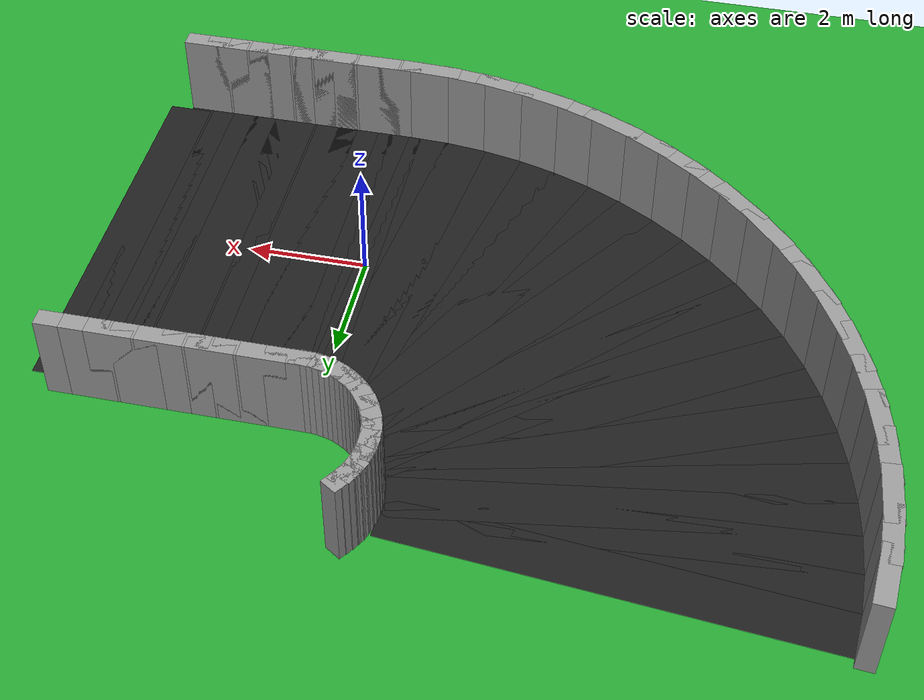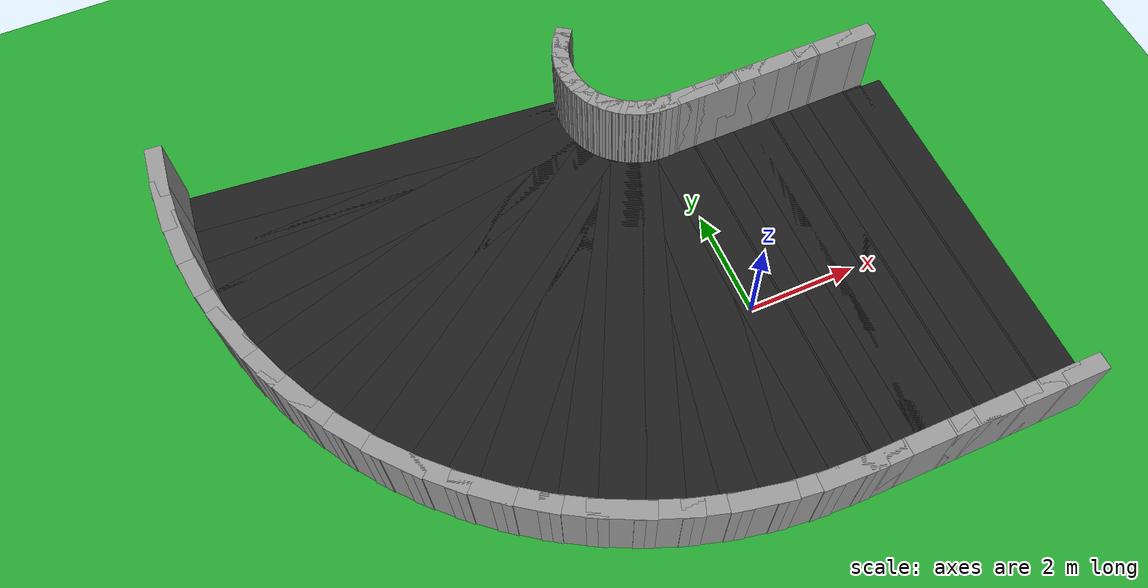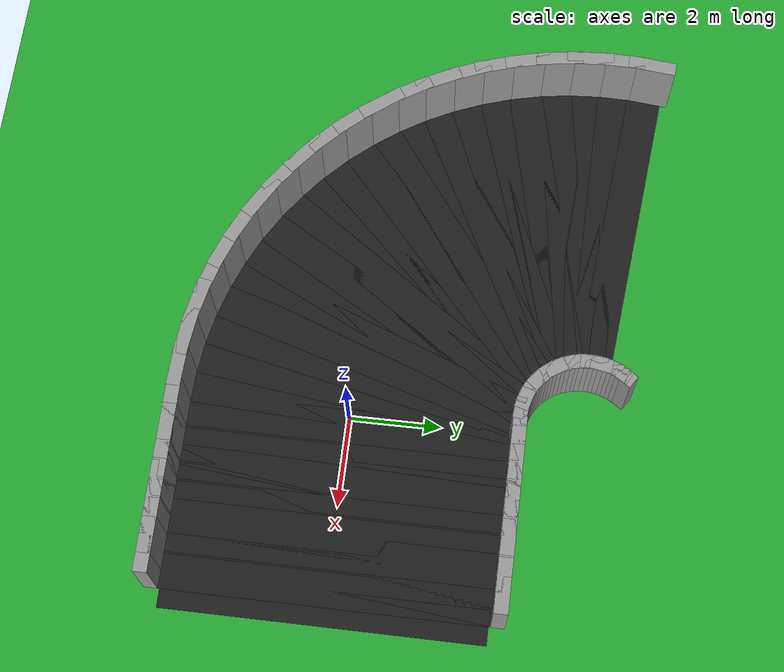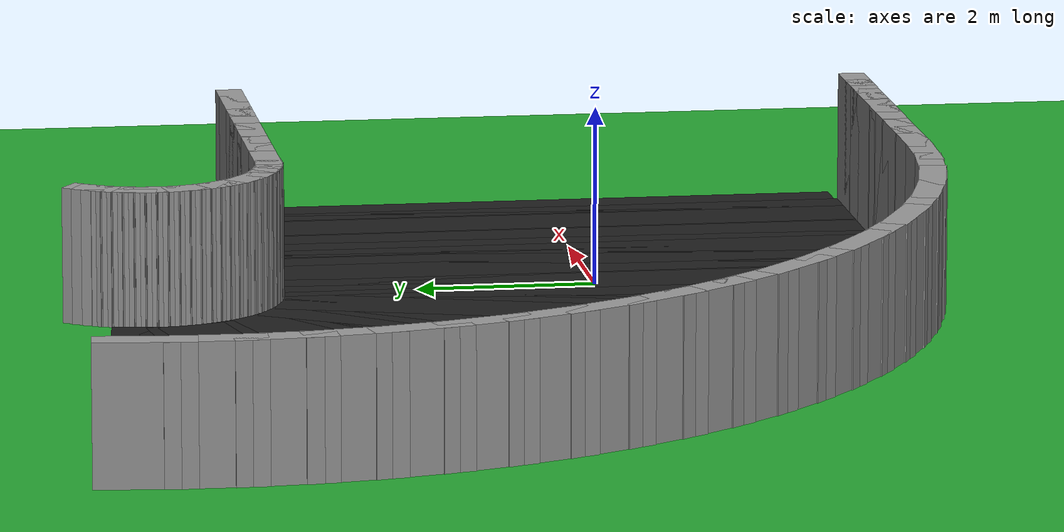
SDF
<sdf version="1.6">
 <world name="obstacle_taper">
  <include><uri>model://sun</uri></include>
  <model name="ground_plane">
   <static>true</static>
   <link name="link">
    <collision name="collision">
     <surface><friction><ode><mu>100</mu><mu2>50</mu2></ode></friction></surface>
     <geometry><plane><normal>0 0 1</normal><size>120 120</size></plane></geometry>
    </collision>
    <visual name="visual">
     <geometry><plane><normal>0 0 1</normal><size>120 120</size></plane></geometry>
     <material>
      <script><uri>file://media/materials/scripts/gazebo.material</uri><name>Gazebo/Green</name></script>
     </material>
    </visual>
   </link>
  </model>
  <model name="asphalt_0">
   <static>true</static>
   <pose>0.200 0.000 0.005 0 0 0.00000</pose>
   <link name="link">
    <visual name="visual">
     <geometry><box><size>0.760 7.000 0.010</size></box></geometry>
     <material>
      <script><uri>file://media/materials/scripts/gazebo.material</uri><name>Gazebo/Black</name></script>
     </material>
    </visual>
   </link>
  </model>
  <model name="curbL_0">
   <static>true</static>
   <pose>0.200 3.650 0.750 0 0 0.00000</pose>
   <link name="link">
    <collision name="collision"><geometry><box><size>0.760 0.300 1.500</size></box></geometry></collision>
    <visual name="visual">
     <geometry><box><size>0.760 0.300 1.500</size></box></geometry>
     <material>
      <script><uri>file://media/materials/scripts/gazebo.material</uri><name>Gazebo/Grey</name></script>
     </material>
    </visual>
   </link>
  </model>
  <model name="curbR_0">
   <static>true</static>
   <pose>0.200 -3.650 0.750 0 0 0.00000</pose>
   <link name="link">
    <collision name="collision"><geometry><box><size>0.760 0.300 1.500</size></box></geometry></collision>
    <visual name="visual">
     <geometry><box><size>0.760 0.300 1.500</size></box></geometry>
     <material>
      <script><uri>file://media/materials/scripts/gazebo.material</uri><name>Gazebo/Grey</name></script>
     </material>
    </visual>
   </link>
  </model>
  <model name="asphalt_1">
   <static>true</static>
   <pose>0.600 0.000 0.005 0 0 0.00000</pose>
   <link name="link">
    <visual name="visual">
     <geometry><box><size>0.760 7.000 0.010</size></box></geometry>
     <material>
      <script><uri>file://media/materials/scripts/gazebo.material</uri><name>Gazebo/Black</name></script>
     </material>
    </visual>
   </link>
  </model>
  <model name="curbL_1">
   <static>true</static>
   <pose>0.600 3.650 0.750 0 0 0.00000</pose>
   <link name="link">
    <collision name="collision"><geometry><box><size>0.760 0.300 1.500</size></box></geometry></collision>
    <visual name="visual">
     <geometry><box><size>0.760 0.300 1.500</size></box></geometry>
     <material>
      <script><uri>file://media/materials/scripts/gazebo.material</uri><name>Gazebo/Grey</name></script>
     </material>
    </visual>
   </link>
  </model>
  <model name="curbR_1">
   <static>true</static>
   <pose>0.600 -3.650 0.750 0 0 0.00000</pose>
   <link name="link">
    <collision name="collision"><geometry><box><size>0.760 0.300 1.500</size></box></geometry></collision>
    <visual name="visual">
     <geometry><box><size>0.760 0.300 1.500</size></box></geometry>
     <material>
      <script><uri>file://media/materials/scripts/gazebo.material</uri><name>Gazebo/Grey</name></script>
     </material>
    </visual>
   </link>
  </model>
  <model name="asphalt_2">
   <static>true</static>
   <pose>1.000 0.000 0.005 0 0 0.00000</pose>
   <link name="link">
    <visual name="visual">
     <geometry><box><size>0.760 7.000 0.010</size></box></geometry>
     <material>
      <script><uri>file://media/materials/scripts/gazebo.material</uri><name>Gazebo/Black</name></script>
     </material>
    </visual>
   </link>
  </model>
  <model name="curbL_2">
   <static>true</static>
   <pose>1.000 3.650 0.750 0 0 0.00000</pose>
   <link name="link">
    <collision name="collision"><geometry><box><size>0.760 0.300 1.500</size></box></geometry></collision>
    <visual name="visual">
     <geometry><box><size>0.760 0.300 1.500</size></box></geometry>
     <material>
      <script><uri>file://media/materials/scripts/gazebo.material</uri><name>Gazebo/Grey</name></script>
     </material>
    </visual>
   </link>
  </model>
  <model name="curbR_2">
   <static>true</static>
   <pose>1.000 -3.650 0.750 0 0 0.00000</pose>
   <link name="link">
    <collision name="collision"><geometry><box><size>0.760 0.300 1.500</size></box></geometry></collision>
    <visual name="visual">
     <geometry><box><size>0.760 0.300 1.500</size></box></geometry>
     <material>
      <script><uri>file://media/materials/scripts/gazebo.material</uri><name>Gazebo/Grey</name></script>
     </material>
    </visual>
   </link>
  </model>
  <model name="asphalt_3">
   <static>true</static>
   <pose>1.400 0.000 0.005 0 0 0.00000</pose>
   <link name="link">
    <visual name="visual">
     <geometry><box><size>0.760 7.000 0.010</size></box></geometry>
     <material>
      <script><uri>file://media/materials/scripts/gazebo.material</uri><name>Gazebo/Black</name></script>
     </material>
    </visual>
   </link>
  </model>
  <model name="curbL_3">
   <static>true</static>
   <pose>1.400 3.650 0.750 0 0 0.00000</pose>
   <link name="link">
    <collision name="collision"><geometry><box><size>0.760 0.300 1.500</size></box></geometry></collision>
    <visual name="visual">
     <geometry><box><size>0.760 0.300 1.500</size></box></geometry>
     <material>
      <script><uri>file://media/materials/scripts/gazebo.material</uri><name>Gazebo/Grey</name></script>
     </material>
    </visual>
   </link>
  </model>
  <model name="curbR_3">
   <static>true</static>
   <pose>1.400 -3.650 0.750 0 0 0.00000</pose>
   <link name="link">
    <collision name="collision"><geometry><box><size>0.760 0.300 1.500</size></box></geometry></collision>
    <visual name="visual">
     <geometry><box><size>0.760 0.300 1.500</size></box></geometry>
     <material>
      <script><uri>file://media/materials/scripts/gazebo.material</uri><name>Gazebo/Grey</name></script>
     </material>
    </visual>
   </link>
  </model>
  <model name="asphalt_4">
   <static>true</static>
   <pose>1.800 0.000 0.005 0 0 0.00000</pose>
   <link name="link">
    <visual name="visual">
     <geometry><box><size>0.760 7.000 0.010</size></box></geometry>
     <material>
      <script><uri>file://media/materials/scripts/gazebo.material</uri><name>Gazebo/Black</name></script>
     </material>
    </visual>
   </link>
  </model>
  <model name="curbL_4">
   <static>true</static>
   <pose>1.800 3.650 0.750 0 0 0.00000</pose>
   <link name="link">
    <collision name="collision"><geometry><box><size>0.760 0.300 1.500</size></box></geometry></collision>
    <visual name="visual">
     <geometry><box><size>0.760 0.300 1.500</size></box></geometry>
     <material>
      <script><uri>file://media/materials/scripts/gazebo.material</uri><name>Gazebo/Grey</name></script>
     </material>
    </visual>
   </link>
  </model>
  <model name="curbR_4">
   <static>true</static>
   <pose>1.800 -3.650 0.750 0 0 0.00000</pose>
   <link name="link">
    <collision name="collision"><geometry><box><size>0.760 0.300 1.500</size></box></geometry></collision>
    <visual name="visual">
     <geometry><box><size>0.760 0.300 1.500</size></box></geometry>
     <material>
      <script><uri>file://media/materials/scripts/gazebo.material</uri><name>Gazebo/Grey</name></script>
     </material>
    </visual>
   </link>
  </model>
  <model name="asphalt_5">
   <static>true</static>
   <pose>2.200 0.000 0.005 0 0 0.00000</pose>
   <link name="link">
    <visual name="visual">
     <geometry><box><size>0.760 7.000 0.010</size></box></geometry>
     <material>
      <script><uri>file://media/materials/scripts/gazebo.material</uri><name>Gazebo/Black</name></script>
     </material>
    </visual>
   </link>
  </model>
  <model name="curbL_5">
   <static>true</static>
   <pose>2.200 3.650 0.750 0 0 0.00000</pose>
   <link name="link">
    <collision name="collision"><geometry><box><size>0.760 0.300 1.500</size></box></geometry></collision>
    <visual name="visual">
     <geometry><box><size>0.760 0.300 1.500</size></box></geometry>
     <material>
      <script><uri>file://media/materials/scripts/gazebo.material</uri><name>Gazebo/Grey</name></script>
     </material>
    </visual>
   </link>
  </model>
  <model name="curbR_5">
   <static>true</static>
   <pose>2.200 -3.650 0.750 0 0 0.00000</pose>
   <link name="link">
    <collision name="collision"><geometry><box><size>0.760 0.300 1.500</size></box></geometry></collision>
    <visual name="visual">
     <geometry><box><size>0.760 0.300 1.500</size></box></geometry>
     <material>
      <script><uri>file://media/materials/scripts/gazebo.material</uri><name>Gazebo/Grey</name></script>
     </material>
    </visual>
   </link>
  </model>
  <model name="asphalt_6">
   <static>true</static>
   <pose>2.600 0.000 0.005 0 0 0.00000</pose>
   <link name="link">
    <visual name="visual">
     <geometry><box><size>0.760 7.000 0.010</size></box></geometry>
     <material>
      <script><uri>file://media/materials/scripts/gazebo.material</uri><name>Gazebo/Black</name></script>
     </material>
    </visual>
   </link>
  </model>
  <model name="curbL_6">
   <static>true</static>
   <pose>2.600 3.650 0.750 0 0 0.00000</pose>
   <link name="link">
    <collision name="collision"><geometry><box><size>0.760 0.300 1.500</size></box></geometry></collision>
    <visual name="visual">
     <geometry><box><size>0.760 0.300 1.500</size></box></geometry>
     <material>
      <script><uri>file://media/materials/scripts/gazebo.material</uri><name>Gazebo/Grey</name></script>
     </material>
    </visual>
   </link>
  </model>
  <model name="curbR_6">
   <static>true</static>
   <pose>2.600 -3.650 0.750 0 0 0.00000</pose>
   <link name="link">
    <collision name="collision"><geometry><box><size>0.760 0.300 1.500</size></box></geometry></collision>
    <visual name="visual">
     <geometry><box><size>0.760 0.300 1.500</size></box></geometry>
     <material>
      <script><uri>file://media/materials/scripts/gazebo.material</uri><name>Gazebo/Grey</name></script>
     </material>
    </visual>
   </link>
  </model>
  <model name="asphalt_7">
   <static>true</static>
   <pose>3.000 0.000 0.005 0 0 0.00000</pose>
   <link name="link">
    <visual name="visual">
     <geometry><box><size>0.760 7.000 0.010</size></box></geometry>
     <material>
      <script><uri>file://media/materials/scripts/gazebo.material</uri><name>Gazebo/Black</name></script>
     </material>
    </visual>
   </link>
  </model>
  <model name="curbL_7">
   <static>true</static>
   <pose>3.000 3.650 0.750 0 0 0.00000</pose>
   <link name="link">
    <collision name="collision"><geometry><box><size>0.760 0.300 1.500</size></box></geometry></collision>
    <visual name="visual">
     <geometry><box><size>0.760 0.300 1.500</size></box></geometry>
     <material>
      <script><uri>file://media/materials/scripts/gazebo.material</uri><name>Gazebo/Grey</name></script>
     </material>
    </visual>
   </link>
  </model>
  <model name="curbR_7">
   <static>true</static>
   <pose>3.000 -3.650 0.750 0 0 0.00000</pose>
   <link name="link">
    <collision name="collision"><geometry><box><size>0.760 0.300 1.500</size></box></geometry></collision>
    <visual name="visual">
     <geometry><box><size>0.760 0.300 1.500</size></box></geometry>
     <material>
      <script><uri>file://media/materials/scripts/gazebo.material</uri><name>Gazebo/Grey</name></script>
     </material>
    </visual>
   </link>
  </model>
  <model name="asphalt_8">
   <static>true</static>
   <pose>3.400 0.000 0.005 0 0 0.00000</pose>
   <link name="link">
    <visual name="visual">
     <geometry><box><size>0.760 7.000 0.010</size></box></geometry>
     <material>
      <script><uri>file://media/materials/scripts/gazebo.material</uri><name>Gazebo/Black</name></script>
     </material>
    </visual>
   </link>
  </model>
  <model name="curbL_8">
   <static>true</static>
   <pose>3.400 3.650 0.750 0 0 0.00000</pose>
   <link name="link">
    <collision name="collision"><geometry><box><size>0.760 0.300 1.500</size></box></geometry></collision>
    <visual name="visual">
     <geometry><box><size>0.760 0.300 1.500</size></box></geometry>
     <material>
      <script><uri>file://media/materials/scripts/gazebo.material</uri><name>Gazebo/Grey</name></script>
     </material>
    </visual>
   </link>
  </model>
  <model name="curbR_8">
   <static>true</static>
   <pose>3.400 -3.650 0.750 0 0 0.00000</pose>
   <link name="link">
    <collision name="collision"><geometry><box><size>0.760 0.300 1.500</size></box></geometry></collision>
    <visual name="visual">
     <geometry><box><size>0.760 0.300 1.500</size></box></geometry>
     <material>
      <script><uri>file://media/materials/scripts/gazebo.material</uri><name>Gazebo/Grey</name></script>
     </material>
    </visual>
   </link>
  </model>
  <model name="asphalt_9">
   <static>true</static>
   <pose>3.800 0.000 0.005 0 0 0.00000</pose>
   <link name="link">
    <visual name="visual">
     <geometry><box><size>0.760 7.000 0.010</size></box></geometry>
     <material>
      <script><uri>file://media/materials/scripts/gazebo.material</uri><name>Gazebo/Black</name></script>
     </material>
    </visual>
   </link>
  </model>
  <model name="curbL_9">
   <static>true</static>
   <pose>3.800 3.650 0.750 0 0 0.00000</pose>
   <link name="link">
    <collision name="collision"><geometry><box><size>0.760 0.300 1.500</size></box></geometry></collision>
    <visual name="visual">
     <geometry><box><size>0.760 0.300 1.500</size></box></geometry>
     <material>
      <script><uri>file://media/materials/scripts/gazebo.material</uri><name>Gazebo/Grey</name></script>
     </material>
    </visual>
   </link>
  </model>
  <model name="curbR_9">
   <static>true</static>
   <pose>3.800 -3.650 0.750 0 0 0.00000</pose>
   <link name="link">
    <collision name="collision"><geometry><box><size>0.760 0.300 1.500</size></box></geometry></collision>
    <visual name="visual">
     <geometry><box><size>0.760 0.300 1.500</size></box></geometry>
     <material>
      <script><uri>file://media/materials/scripts/gazebo.material</uri><name>Gazebo/Grey</name></script>
     </material>
    </visual>
   </link>
  </model>
  <model name="asphalt_10">
   <static>true</static>
   <pose>4.200 0.000 0.005 0 0 0.00000</pose>
   <link name="link">
    <visual name="visual">
     <geometry><box><size>0.760 6.924 0.010</size></box></geometry>
     <material>
      <script><uri>file://media/materials/scripts/gazebo.material</uri><name>Gazebo/Black</name></script>
     </material>
    </visual>
   </link>
  </model>
  <model name="curbL_239">
   <static>true</static>
   <pose>-1.128 5.744 0.750 0 0 -2.15307</pose>
   <link name="link">
    <collision name="collision"><geometry><box><size>0.470 0.300 1.500</size></box></geometry></collision>
    <visual name="visual">
     <geometry><box><size>0.470 0.300 1.500</size></box></geometry>
     <material>
      <script><uri>file://media/materials/scripts/gazebo.material</uri><name>Gazebo/Grey</name></script>
     </material>
    </visual>
   </link>
  </model>
  <model name="curbL_240">
   <static>true</static>
   <pose>-1.184 5.650 0.750 0 0 -2.07183</pose>
   <link name="link">
    <collision name="collision"><geometry><box><size>0.470 0.300 1.500</size></box></geometry></collision>
    <visual name="visual">
     <geometry><box><size>0.470 0.300 1.500</size></box></geometry>
     <material>
      <script><uri>file://media/materials/scripts/gazebo.material</uri><name>Gazebo/Grey</name></script>
     </material>
    </visual>
   </link>
  </model>
  <model name="curbL_241">
   <static>true</static>
   <pose>-1.233 5.552 0.750 0 0 -1.99058</pose>
   <link name="link">
    <collision name="collision"><geometry><box><size>0.470 0.300 1.500</size></box></geometry></collision>
    <visual name="visual">
     <geometry><box><size>0.470 0.300 1.500</size></box></geometry>
     <material>
      <script><uri>file://media/materials/scripts/gazebo.material</uri><name>Gazebo/Grey</name></script>
     </material>
    </visual>
   </link>
  </model>
  <model name="curbL_242">
   <static>true</static>
   <pose>-1.274 5.450 0.750 0 0 -1.90933</pose>
   <link name="link">
    <collision name="collision"><geometry><box><size>0.470 0.300 1.500</size></box></geometry></collision>
    <visual name="visual">
     <geometry><box><size>0.470 0.300 1.500</size></box></geometry>
     <material>
      <script><uri>file://media/materials/scripts/gazebo.material</uri><name>Gazebo/Grey</name></script>
     </material>
    </visual>
   </link>
  </model>
  <model name="curbL_243">
   <static>true</static>
   <pose>-1.306 5.345 0.750 0 0 -1.82808</pose>
   <link name="link">
    <collision name="collision"><geometry><box><size>0.470 0.300 1.500</size></box></geometry></collision>
    <visual name="visual">
     <geometry><box><size>0.470 0.300 1.500</size></box></geometry>
     <material>
      <script><uri>file://media/materials/scripts/gazebo.material</uri><name>Gazebo/Grey</name></script>
     </material>
    </visual>
   </link>
  </model>
  <model name="curbL_244">
   <static>true</static>
   <pose>-1.329 5.238 0.750 0 0 -1.74683</pose>
   <link name="link">
    <collision name="collision"><geometry><box><size>0.470 0.300 1.500</size></box></geometry></collision>
    <visual name="visual">
     <geometry><box><size>0.470 0.300 1.500</size></box></geometry>
     <material>
      <script><uri>file://media/materials/scripts/gazebo.material</uri><name>Gazebo/Grey</name></script>
     </material>
    </visual>
   </link>
  </model>
  <model name="asphalt_245">
   <static>true</static>
   <pose>-4.975 5.474 0.005 0 0 -1.66559</pose>
   <link name="link">
    <visual name="visual">
     <geometry><box><size>0.766 7.000 0.010</size></box></geometry>
     <material>
      <script><uri>file://media/materials/scripts/gazebo.material</uri><name>Gazebo/Black</name></script>
     </material>
    </visual>
   </link>
  </model>
  <model name="curbL_245">
   <static>true</static>
   <pose>-1.344 5.129 0.750 0 0 -1.66559</pose>
   <link name="link">
    <collision name="collision"><geometry><box><size>0.470 0.300 1.500</size></box></geometry></collision>
    <visual name="visual">
     <geometry><box><size>0.470 0.300 1.500</size></box></geometry>
     <material>
      <script><uri>file://media/materials/scripts/gazebo.material</uri><name>Gazebo/Grey</name></script>
     </material>
    </visual>
   </link>
  </model>
  <model name="curbR_245">
   <static>true</static>
   <pose>-8.605 5.820 0.750 0 0 -1.66559</pose>
   <link name="link">
    <collision name="collision"><geometry><box><size>1.063 0.300 1.500</size></box></geometry></collision>
    <visual name="visual">
     <geometry><box><size>1.063 0.300 1.500</size></box></geometry>
     <material>
      <script><uri>file://media/materials/scripts/gazebo.material</uri><name>Gazebo/Grey</name></script>
     </material>
    </visual>
   </link>
  </model>
  <model name="asphalt_246">
   <static>true</static>
   <pose>-4.997 5.069 0.005 0 0 -1.58434</pose>
   <link name="link">
    <visual name="visual">
     <geometry><box><size>0.766 7.000 0.010</size></box></geometry>
     <material>
      <script><uri>file://media/materials/scripts/gazebo.material</uri><name>Gazebo/Black</name></script>
     </material>
    </visual>
   </link>
  </model>
  <model name="curbL_246">
   <static>true</static>
   <pose>-1.350 5.020 0.750 0 0 -1.58434</pose>
   <link name="link">
    <collision name="collision"><geometry><box><size>0.470 0.300 1.500</size></box></geometry></collision>
    <visual name="visual">
     <geometry><box><size>0.470 0.300 1.500</size></box></geometry>
     <material>
      <script><uri>file://media/materials/scripts/gazebo.material</uri><name>Gazebo/Grey</name></script>
     </material>
    </visual>
   </link>
  </model>
  <model name="curbR_246">
   <static>true</static>
   <pose>-8.643 5.118 0.750 0 0 -1.58434</pose>
   <link name="link">
    <collision name="collision"><geometry><box><size>1.063 0.300 1.500</size></box></geometry></collision>
    <visual name="visual">
     <geometry><box><size>1.063 0.300 1.500</size></box></geometry>
     <material>
      <script><uri>file://media/materials/scripts/gazebo.material</uri><name>Gazebo/Grey</name></script>
     </material>
    </visual>
   </link>
  </model>
  <model name="asphalt_247">
   <static>true</static>
   <pose>-4.986 4.663 0.005 0 0 -1.50309</pose>
   <link name="link">
    <visual name="visual">
     <geometry><box><size>0.766 7.000 0.010</size></box></geometry>
     <material>
      <script><uri>file://media/materials/scripts/gazebo.material</uri><name>Gazebo/Black</name></script>
     </material>
    </visual>
   </link>
  </model>
  <model name="curbL_247">
   <static>true</static>
   <pose>-1.347 4.910 0.750 0 0 -1.50309</pose>
   <link name="link">
    <collision name="collision"><geometry><box><size>0.470 0.300 1.500</size></box></geometry></collision>
    <visual name="visual">
     <geometry><box><size>0.470 0.300 1.500</size></box></geometry>
     <material>
      <script><uri>file://media/materials/scripts/gazebo.material</uri><name>Gazebo/Grey</name></script>
     </material>
    </visual>
   </link>
  </model>
  <model name="curbR_247">
   <static>true</static>
   <pose>-8.624 4.417 0.750 0 0 -1.50309</pose>
   <link name="link">
    <collision name="collision"><geometry><box><size>1.063 0.300 1.500</size></box></geometry></collision>
    <visual name="visual">
     <geometry><box><size>1.063 0.300 1.500</size></box></geometry>
     <material>
      <script><uri>file://media/materials/scripts/gazebo.material</uri><name>Gazebo/Grey</name></script>
     </material>
    </visual>
   </link>
  </model>
  <model name="asphalt_248">
   <static>true</static>
   <pose>-4.942 4.260 0.005 0 0 -1.42184</pose>
   <link name="link">
    <visual name="visual">
     <geometry><box><size>0.766 7.000 0.010</size></box></geometry>
     <material>
      <script><uri>file://media/materials/scripts/gazebo.material</uri><name>Gazebo/Black</name></script>
     </material>
    </visual>
   </link>
  </model>
  <model name="curbL_248">
   <static>true</static>
   <pose>-1.335 4.801 0.750 0 0 -1.42184</pose>
   <link name="link">
    <collision name="collision"><geometry><box><size>0.470 0.300 1.500</size></box></geometry></collision>
    <visual name="visual">
     <geometry><box><size>0.470 0.300 1.500</size></box></geometry>
     <material>
      <script><uri>file://media/materials/scripts/gazebo.material</uri><name>Gazebo/Grey</name></script>
     </material>
    </visual>
   </link>
  </model>
  <model name="curbR_248">
   <static>true</static>
   <pose>-8.549 3.719 0.750 0 0 -1.42184</pose>
   <link name="link">
    <collision name="collision"><geometry><box><size>1.063 0.300 1.500</size></box></geometry></collision>
    <visual name="visual">
     <geometry><box><size>1.063 0.300 1.500</size></box></geometry>
     <material>
      <script><uri>file://media/materials/scripts/gazebo.material</uri><name>Gazebo/Grey</name></script>
     </material>
    </visual>
   </link>
  </model>
  <model name="asphalt_249">
   <static>true</static>
   <pose>-4.865 3.861 0.005 0 0 -1.34059</pose>
   <link name="link">
    <visual name="visual">
     <geometry><box><size>0.766 7.000 0.010</size></box></geometry>
     <material>
      <script><uri>file://media/materials/scripts/gazebo.material</uri><name>Gazebo/Black</name></script>
     </material>
    </visual>
   </link>
  </model>
  <model name="curbL_249">
   <static>true</static>
   <pose>-1.315 4.693 0.750 0 0 -1.34059</pose>
   <link name="link">
    <collision name="collision"><geometry><box><size>0.470 0.300 1.500</size></box></geometry></collision>
    <visual name="visual">
     <geometry><box><size>0.470 0.300 1.500</size></box></geometry>
     <material>
      <script><uri>file://media/materials/scripts/gazebo.material</uri><name>Gazebo/Grey</name></script>
     </material>
    </visual>
   </link>
  </model>
  <model name="curbR_249">
   <static>true</static>
   <pose>-8.416 3.029 0.750 0 0 -1.34059</pose>
   <link name="link">
    <collision name="collision"><geometry><box><size>1.063 0.300 1.500</size></box></geometry></collision>
    <visual name="visual">
     <geometry><box><size>1.063 0.300 1.500</size></box></geometry>
     <material>
      <script><uri>file://media/materials/scripts/gazebo.material</uri><name>Gazebo/Grey</name></script>
     </material>
    </visual>
   </link>
  </model>
  <model name="asphalt_250">
   <static>true</static>
   <pose>-4.757 3.470 0.005 0 0 -1.25935</pose>
   <link name="link">
    <visual name="visual">
     <geometry><box><size>0.766 7.000 0.010</size></box></geometry>
     <material>
      <script><uri>file://media/materials/scripts/gazebo.material</uri><name>Gazebo/Black</name></script>
     </material>
    </visual>
   </link>
  </model>
  <model name="curbL_250">
   <static>true</static>
   <pose>-1.285 4.588 0.750 0 0 -1.25935</pose>
   <link name="link">
    <collision name="collision"><geometry><box><size>0.470 0.300 1.500</size></box></geometry></collision>
    <visual name="visual">
     <geometry><box><size>0.470 0.300 1.500</size></box></geometry>
     <material>
      <script><uri>file://media/materials/scripts/gazebo.material</uri><name>Gazebo/Grey</name></script>
     </material>
    </visual>
   </link>
  </model>
  <model name="curbR_250">
   <static>true</static>
   <pose>-8.228 2.352 0.750 0 0 -1.25935</pose>
   <link name="link">
    <collision name="collision"><geometry><box><size>1.063 0.300 1.500</size></box></geometry></collision>
    <visual name="visual">
     <geometry><box><size>1.063 0.300 1.500</size></box></geometry>
     <material>
      <script><uri>file://media/materials/scripts/gazebo.material</uri><name>Gazebo/Grey</name></script>
     </material>
    </visual>
   </link>
  </model>
  <model name="asphalt_251">
   <static>true</static>
   <pose>-4.617 3.089 0.005 0 0 -1.17810</pose>
   <link name="link">
    <visual name="visual">
     <geometry><box><size>0.766 7.000 0.010</size></box></geometry>
     <material>
      <script><uri>file://media/materials/scripts/gazebo.material</uri><name>Gazebo/Black</name></script>
     </material>
    </visual>
   </link>
  </model>
  <model name="curbL_251">
   <static>true</static>
   <pose>-1.247 4.485 0.750 0 0 -1.17810</pose>
   <link name="link">
    <collision name="collision"><geometry><box><size>0.470 0.300 1.500</size></box></geometry></collision>
    <visual name="visual">
     <geometry><box><size>0.470 0.300 1.500</size></box></geometry>
     <material>
      <script><uri>file://media/materials/scripts/gazebo.material</uri><name>Gazebo/Grey</name></script>
     </material>
    </visual>
   </link>
  </model>
  <model name="curbR_251">
   <static>true</static>
   <pose>-7.986 1.693 0.750 0 0 -1.17810</pose>
   <link name="link">
    <collision name="collision"><geometry><box><size>1.063 0.300 1.500</size></box></geometry></collision>
    <visual name="visual">
     <geometry><box><size>1.063 0.300 1.500</size></box></geometry>
     <material>
      <script><uri>file://media/materials/scripts/gazebo.material</uri><name>Gazebo/Grey</name></script>
     </material>
    </visual>
   </link>
  </model>
  <model name="asphalt_252">
   <static>true</static>
   <pose>-4.446 2.721 0.005 0 0 -1.09685</pose>
   <link name="link">
    <visual name="visual">
     <geometry><box><size>0.766 7.000 0.010</size></box></geometry>
     <material>
      <script><uri>file://media/materials/scripts/gazebo.material</uri><name>Gazebo/Black</name></script>
     </material>
    </visual>
   </link>
  </model>
  <model name="curbL_252">
   <static>true</static>
   <pose>-1.201 4.385 0.750 0 0 -1.09685</pose>
   <link name="link">
    <collision name="collision"><geometry><box><size>0.470 0.300 1.500</size></box></geometry></collision>
    <visual name="visual">
     <geometry><box><size>0.470 0.300 1.500</size></box></geometry>
     <material>
      <script><uri>file://media/materials/scripts/gazebo.material</uri><name>Gazebo/Grey</name></script>
     </material>
    </visual>
   </link>
  </model>
  <model name="curbR_252">
   <static>true</static>
   <pose>-7.691 1.056 0.750 0 0 -1.09685</pose>
   <link name="link">
    <collision name="collision"><geometry><box><size>1.063 0.300 1.500</size></box></geometry></collision>
    <visual name="visual">
     <geometry><box><size>1.063 0.300 1.500</size></box></geometry>
     <material>
      <script><uri>file://media/materials/scripts/gazebo.material</uri><name>Gazebo/Grey</name></script>
     </material>
    </visual>
   </link>
  </model>
  <model name="asphalt_253">
   <static>true</static>
   <pose>-4.247 2.367 0.005 0 0 -1.01560</pose>
   <link name="link">
    <visual name="visual">
     <geometry><box><size>0.766 7.000 0.010</size></box></geometry>
     <material>
      <script><uri>file://media/materials/scripts/gazebo.material</uri><name>Gazebo/Black</name></script>
     </material>
    </visual>
   </link>
  </model>
  <model name="curbL_253">
   <static>true</static>
   <pose>-1.147 4.290 0.750 0 0 -1.01560</pose>
   <link name="link">
    <collision name="collision"><geometry><box><size>0.470 0.300 1.500</size></box></geometry></collision>
    <visual name="visual">
     <geometry><box><size>0.470 0.300 1.500</size></box></geometry>
     <material>
      <script><uri>file://media/materials/scripts/gazebo.material</uri><name>Gazebo/Grey</name></script>
     </material>
    </visual>
   </link>
  </model>
  <model name="curbR_253">
   <static>true</static>
   <pose>-7.346 0.445 0.750 0 0 -1.01560</pose>
   <link name="link">
    <collision name="collision"><geometry><box><size>1.063 0.300 1.500</size></box></geometry></collision>
    <visual name="visual">
     <geometry><box><size>1.063 0.300 1.500</size></box></geometry>
     <material>
      <script><uri>file://media/materials/scripts/gazebo.material</uri><name>Gazebo/Grey</name></script>
     </material>
    </visual>
   </link>
  </model>
  <model name="asphalt_254">
   <static>true</static>
   <pose>-4.019 2.031 0.005 0 0 -0.93435</pose>
   <link name="link">
    <visual name="visual">
     <geometry><box><size>0.766 7.000 0.010</size></box></geometry>
     <material>
      <script><uri>file://media/materials/scripts/gazebo.material</uri><name>Gazebo/Black</name></script>
     </material>
    </visual>
   </link>
  </model>
  <model name="curbL_254">
   <static>true</static>
   <pose>-1.086 4.199 0.750 0 0 -0.93435</pose>
   <link name="link">
    <collision name="collision"><geometry><box><size>0.470 0.300 1.500</size></box></geometry></collision>
    <visual name="visual">
     <geometry><box><size>0.470 0.300 1.500</size></box></geometry>
     <material>
      <script><uri>file://media/materials/scripts/gazebo.material</uri><name>Gazebo/Grey</name></script>
     </material>
    </visual>
   </link>
  </model>
  <model name="curbR_254">
   <static>true</static>
   <pose>-6.952 -0.136 0.750 0 0 -0.93435</pose>
   <link name="link">
    <collision name="collision"><geometry><box><size>1.063 0.300 1.500</size></box></geometry></collision>
    <visual name="visual">
     <geometry><box><size>1.063 0.300 1.500</size></box></geometry>
     <material>
      <script><uri>file://media/materials/scripts/gazebo.material</uri><name>Gazebo/Grey</name></script>
     </material>
    </visual>
   </link>
  </model>
  <model name="asphalt_255">
   <static>true</static>
   <pose>-3.765 1.715 0.005 0 0 -0.85310</pose>
   <link name="link">
    <visual name="visual">
     <geometry><box><size>0.766 7.000 0.010</size></box></geometry>
     <material>
      <script><uri>file://media/materials/scripts/gazebo.material</uri><name>Gazebo/Black</name></script>
     </material>
    </visual>
   </link>
  </model>
  <model name="curbL_255">
   <static>true</static>
   <pose>-1.017 4.113 0.750 0 0 -0.85310</pose>
   <link name="link">
    <collision name="collision"><geometry><box><size>0.470 0.300 1.500</size></box></geometry></collision>
    <visual name="visual">
     <geometry><box><size>0.470 0.300 1.500</size></box></geometry>
     <material>
      <script><uri>file://media/materials/scripts/gazebo.material</uri><name>Gazebo/Grey</name></script>
     </material>
    </visual>
   </link>
  </model>
  <model name="curbR_255">
   <static>true</static>
   <pose>-6.512 -0.683 0.750 0 0 -0.85310</pose>
   <link name="link">
    <collision name="collision"><geometry><box><size>1.063 0.300 1.500</size></box></geometry></collision>
    <visual name="visual">
     <geometry><box><size>1.063 0.300 1.500</size></box></geometry>
     <material>
      <script><uri>file://media/materials/scripts/gazebo.material</uri><name>Gazebo/Grey</name></script>
     </material>
    </visual>
   </link>
  </model>
  <model name="asphalt_256">
   <static>true</static>
   <pose>-3.485 1.420 0.005 0 0 -0.77186</pose>
   <link name="link">
    <visual name="visual">
     <geometry><box><size>0.766 7.000 0.010</size></box></geometry>
     <material>
      <script><uri>file://media/materials/scripts/gazebo.material</uri><name>Gazebo/Black</name></script>
     </material>
    </visual>
   </link>
  </model>
  <model name="curbL_256">
   <static>true</static>
   <pose>-0.942 4.034 0.750 0 0 -0.77186</pose>
   <link name="link">
    <collision name="collision"><geometry><box><size>0.470 0.300 1.500</size></box></geometry></collision>
    <visual name="visual">
     <geometry><box><size>0.470 0.300 1.500</size></box></geometry>
     <material>
      <script><uri>file://media/materials/scripts/gazebo.material</uri><name>Gazebo/Grey</name></script>
     </material>
    </visual>
   </link>
  </model>
  <model name="curbR_256">
   <static>true</static>
   <pose>-6.029 -1.193 0.750 0 0 -0.77186</pose>
   <link name="link">
    <collision name="collision"><geometry><box><size>1.063 0.300 1.500</size></box></geometry></collision>
    <visual name="visual">
     <geometry><box><size>1.063 0.300 1.500</size></box></geometry>
     <material>
      <script><uri>file://media/materials/scripts/gazebo.material</uri><name>Gazebo/Grey</name></script>
     </material>
    </visual>
   </link>
  </model>
  <model name="asphalt_257">
   <static>true</static>
   <pose>-3.183 1.149 0.005 0 0 -0.69061</pose>
   <link name="link">
    <visual name="visual">
     <geometry><box><size>0.766 7.000 0.010</size></box></geometry>
     <material>
      <script><uri>file://media/materials/scripts/gazebo.material</uri><name>Gazebo/Black</name></script>
     </material>
    </visual>
   </link>
  </model>
  <model name="curbL_257">
   <static>true</static>
   <pose>-0.860 3.961 0.750 0 0 -0.69061</pose>
   <link name="link">
    <collision name="collision"><geometry><box><size>0.470 0.300 1.500</size></box></geometry></collision>
    <visual name="visual">
     <geometry><box><size>0.470 0.300 1.500</size></box></geometry>
     <material>
      <script><uri>file://media/materials/scripts/gazebo.material</uri><name>Gazebo/Grey</name></script>
     </material>
    </visual>
   </link>
  </model>
  <model name="curbR_257">
   <static>true</static>
   <pose>-5.506 -1.662 0.750 0 0 -0.69061</pose>
   <link name="link">
    <collision name="collision"><geometry><box><size>1.063 0.300 1.500</size></box></geometry></collision>
    <visual name="visual">
     <geometry><box><size>1.063 0.300 1.500</size></box></geometry>
     <material>
      <script><uri>file://media/materials/scripts/gazebo.material</uri><name>Gazebo/Grey</name></script>
     </material>
    </visual>
   </link>
  </model>
  <model name="asphalt_258">
   <static>true</static>
   <pose>-2.860 0.904 0.005 0 0 -0.60936</pose>
   <link name="link">
    <visual name="visual">
     <geometry><box><size>0.766 7.000 0.010</size></box></geometry>
     <material>
      <script><uri>file://media/materials/scripts/gazebo.material</uri><name>Gazebo/Black</name></script>
     </material>
    </visual>
   </link>
  </model>
  <model name="curbL_258">
   <static>true</static>
   <pose>-0.773 3.894 0.750 0 0 -0.60936</pose>
   <link name="link">
    <collision name="collision"><geometry><box><size>0.470 0.300 1.500</size></box></geometry></collision>
    <visual name="visual">
     <geometry><box><size>0.470 0.300 1.500</size></box></geometry>
     <material>
      <script><uri>file://media/materials/scripts/gazebo.material</uri><name>Gazebo/Grey</name></script>
     </material>
    </visual>
   </link>
  </model>
  <model name="curbR_258">
   <static>true</static>
   <pose>-4.947 -2.087 0.750 0 0 -0.60936</pose>
   <link name="link">
    <collision name="collision"><geometry><box><size>1.063 0.300 1.500</size></box></geometry></collision>
    <visual name="visual">
     <geometry><box><size>1.063 0.300 1.500</size></box></geometry>
     <material>
      <script><uri>file://media/materials/scripts/gazebo.material</uri><name>Gazebo/Grey</name></script>
     </material>
    </visual>
   </link>
  </model>
  <model name="asphalt_259">
   <static>true</static>
   <pose>-2.518 0.685 0.005 0 0 -0.52811</pose>
   <link name="link">
    <visual name="visual">
     <geometry><box><size>0.766 7.000 0.010</size></box></geometry>
     <material>
      <script><uri>file://media/materials/scripts/gazebo.material</uri><name>Gazebo/Black</name></script>
     </material>
    </visual>
   </link>
  </model>
  <model name="curbL_259">
   <static>true</static>
   <pose>-0.680 3.835 0.750 0 0 -0.52811</pose>
   <link name="link">
    <collision name="collision"><geometry><box><size>0.470 0.300 1.500</size></box></geometry></collision>
    <visual name="visual">
     <geometry><box><size>0.470 0.300 1.500</size></box></geometry>
     <material>
      <script><uri>file://media/materials/scripts/gazebo.material</uri><name>Gazebo/Grey</name></script>
     </material>
    </visual>
   </link>
  </model>
  <model name="curbR_259">
   <static>true</static>
   <pose>-4.356 -2.465 0.750 0 0 -0.52811</pose>
   <link name="link">
    <collision name="collision"><geometry><box><size>1.063 0.300 1.500</size></box></geometry></collision>
    <visual name="visual">
     <geometry><box><size>1.063 0.300 1.500</size></box></geometry>
     <material>
      <script><uri>file://media/materials/scripts/gazebo.material</uri><name>Gazebo/Grey</name></script>
     </material>
    </visual>
   </link>
  </model>
  <model name="asphalt_260">
   <static>true</static>
   <pose>-2.160 0.495 0.005 0 0 -0.44686</pose>
   <link name="link">
    <visual name="visual">
     <geometry><box><size>0.766 7.000 0.010</size></box></geometry>
     <material>
      <script><uri>file://media/materials/scripts/gazebo.material</uri><name>Gazebo/Black</name></script>
     </material>
    </visual>
   </link>
  </model>
  <model name="curbL_260">
   <static>true</static>
   <pose>-0.584 3.784 0.750 0 0 -0.44686</pose>
   <link name="link">
    <collision name="collision"><geometry><box><size>0.470 0.300 1.500</size></box></geometry></collision>
    <visual name="visual">
     <geometry><box><size>0.470 0.300 1.500</size></box></geometry>
     <material>
      <script><uri>file://media/materials/scripts/gazebo.material</uri><name>Gazebo/Grey</name></script>
     </material>
    </visual>
   </link>
  </model>
  <model name="curbR_260">
   <static>true</static>
   <pose>-3.736 -2.794 0.750 0 0 -0.44686</pose>
   <link name="link">
    <collision name="collision"><geometry><box><size>1.063 0.300 1.500</size></box></geometry></collision>
    <visual name="visual">
     <geometry><box><size>1.063 0.300 1.500</size></box></geometry>
     <material>
      <script><uri>file://media/materials/scripts/gazebo.material</uri><name>Gazebo/Grey</name></script>
     </material>
    </visual>
   </link>
  </model>
  <model name="asphalt_261">
   <static>true</static>
   <pose>-1.787 0.334 0.005 0 0 -0.36562</pose>
   <link name="link">
    <visual name="visual">
     <geometry><box><size>0.766 7.000 0.010</size></box></geometry>
     <material>
      <script><uri>file://media/materials/scripts/gazebo.material</uri><name>Gazebo/Black</name></script>
     </material>
    </visual>
   </link>
  </model>
  <model name="curbL_261">
   <static>true</static>
   <pose>-0.483 3.740 0.750 0 0 -0.36562</pose>
   <link name="link">
    <collision name="collision"><geometry><box><size>0.470 0.300 1.500</size></box></geometry></collision>
    <visual name="visual">
     <geometry><box><size>0.470 0.300 1.500</size></box></geometry>
     <material>
      <script><uri>file://media/materials/scripts/gazebo.material</uri><name>Gazebo/Grey</name></script>
     </material>
    </visual>
   </link>
  </model>
  <model name="curbR_261">
   <static>true</static>
   <pose>-3.091 -3.072 0.750 0 0 -0.36562</pose>
   <link name="link">
    <collision name="collision"><geometry><box><size>1.063 0.300 1.500</size></box></geometry></collision>
    <visual name="visual">
     <geometry><box><size>1.063 0.300 1.500</size></box></geometry>
     <material>
      <script><uri>file://media/materials/scripts/gazebo.material</uri><name>Gazebo/Grey</name></script>
     </material>
    </visual>
   </link>
  </model>
  <model name="asphalt_262">
   <static>true</static>
   <pose>-1.402 0.205 0.005 0 0 -0.28437</pose>
   <link name="link">
    <visual name="visual">
     <geometry><box><size>0.766 7.000 0.010</size></box></geometry>
     <material>
      <script><uri>file://media/materials/scripts/gazebo.material</uri><name>Gazebo/Black</name></script>
     </material>
    </visual>
   </link>
  </model>
  <model name="curbL_262">
   <static>true</static>
   <pose>-0.379 3.705 0.750 0 0 -0.28437</pose>
   <link name="link">
    <collision name="collision"><geometry><box><size>0.470 0.300 1.500</size></box></geometry></collision>
    <visual name="visual">
     <geometry><box><size>0.470 0.300 1.500</size></box></geometry>
     <material>
      <script><uri>file://media/materials/scripts/gazebo.material</uri><name>Gazebo/Grey</name></script>
     </material>
    </visual>
   </link>
  </model>
  <model name="curbR_262">
   <static>true</static>
   <pose>-2.425 -3.296 0.750 0 0 -0.28437</pose>
   <link name="link">
    <collision name="collision"><geometry><box><size>1.063 0.300 1.500</size></box></geometry></collision>
    <visual name="visual">
     <geometry><box><size>1.063 0.300 1.500</size></box></geometry>
     <material>
      <script><uri>file://media/materials/scripts/gazebo.material</uri><name>Gazebo/Grey</name></script>
     </material>
    </visual>
   </link>
  </model>
  <model name="asphalt_263">
   <static>true</static>
   <pose>-1.008 0.107 0.005 0 0 -0.20312</pose>
   <link name="link">
    <visual name="visual">
     <geometry><box><size>0.766 7.000 0.010</size></box></geometry>
     <material>
      <script><uri>file://media/materials/scripts/gazebo.material</uri><name>Gazebo/Black</name></script>
     </material>
    </visual>
   </link>
  </model>
  <model name="curbL_263">
   <static>true</static>
   <pose>-0.272 3.679 0.750 0 0 -0.20312</pose>
   <link name="link">
    <collision name="collision"><geometry><box><size>0.470 0.300 1.500</size></box></geometry></collision>
    <visual name="visual">
     <geometry><box><size>0.470 0.300 1.500</size></box></geometry>
     <material>
      <script><uri>file://media/materials/scripts/gazebo.material</uri><name>Gazebo/Grey</name></script>
     </material>
    </visual>
   </link>
  </model>
  <model name="curbR_263">
   <static>true</static>
   <pose>-1.744 -3.465 0.750 0 0 -0.20312</pose>
   <link name="link">
    <collision name="collision"><geometry><box><size>1.063 0.300 1.500</size></box></geometry></collision>
    <visual name="visual">
     <geometry><box><size>1.063 0.300 1.500</size></box></geometry>
     <material>
      <script><uri>file://media/materials/scripts/gazebo.material</uri><name>Gazebo/Grey</name></script>
     </material>
    </visual>
   </link>
  </model>
  <model name="asphalt_264">
   <static>true</static>
   <pose>-0.608 0.041 0.005 0 0 -0.12187</pose>
   <link name="link">
    <visual name="visual">
     <geometry><box><size>0.766 7.000 0.010</size></box></geometry>
     <material>
      <script><uri>file://media/materials/scripts/gazebo.material</uri><name>Gazebo/Black</name></script>
     </material>
    </visual>
   </link>
  </model>
  <model name="curbL_264">
   <static>true</static>
   <pose>-0.164 3.661 0.750 0 0 -0.12187</pose>
   <link name="link">
    <collision name="collision"><geometry><box><size>0.470 0.300 1.500</size></box></geometry></collision>
    <visual name="visual">
     <geometry><box><size>0.470 0.300 1.500</size></box></geometry>
     <material>
      <script><uri>file://media/materials/scripts/gazebo.material</uri><name>Gazebo/Grey</name></script>
     </material>
    </visual>
   </link>
  </model>
  <model name="curbR_264">
   <static>true</static>
   <pose>-1.051 -3.579 0.750 0 0 -0.12187</pose>
   <link name="link">
    <collision name="collision"><geometry><box><size>1.063 0.300 1.500</size></box></geometry></collision>
    <visual name="visual">
     <geometry><box><size>1.063 0.300 1.500</size></box></geometry>
     <material>
      <script><uri>file://media/materials/scripts/gazebo.material</uri><name>Gazebo/Grey</name></script>
     </material>
    </visual>
   </link>
  </model>
  <model name="asphalt_265">
   <static>true</static>
   <pose>-0.203 0.008 0.005 0 0 -0.04062</pose>
   <link name="link">
    <visual name="visual">
     <geometry><box><size>0.766 7.000 0.010</size></box></geometry>
     <material>
      <script><uri>file://media/materials/scripts/gazebo.material</uri><name>Gazebo/Black</name></script>
     </material>
    </visual>
   </link>
  </model>
  <model name="curbL_265">
   <static>true</static>
   <pose>-0.055 3.652 0.750 0 0 -0.04062</pose>
   <link name="link">
    <collision name="collision"><geometry><box><size>0.470 0.300 1.500</size></box></geometry></collision>
    <visual name="visual">
     <geometry><box><size>0.470 0.300 1.500</size></box></geometry>
     <material>
      <script><uri>file://media/materials/scripts/gazebo.material</uri><name>Gazebo/Grey</name></script>
     </material>
    </visual>
   </link>
  </model>
  <model name="curbR_265">
   <static>true</static>
   <pose>-0.351 -3.636 0.750 0 0 -0.04062</pose>
   <link name="link">
    <collision name="collision"><geometry><box><size>1.063 0.300 1.500</size></box></geometry></collision>
    <visual name="visual">
     <geometry><box><size>1.063 0.300 1.500</size></box></geometry>
     <material>
      <script><uri>file://media/materials/scripts/gazebo.material</uri><name>Gazebo/Grey</name></script>
     </material>
    </visual>
   </link>
  </model>
 </world>
</sdf>
